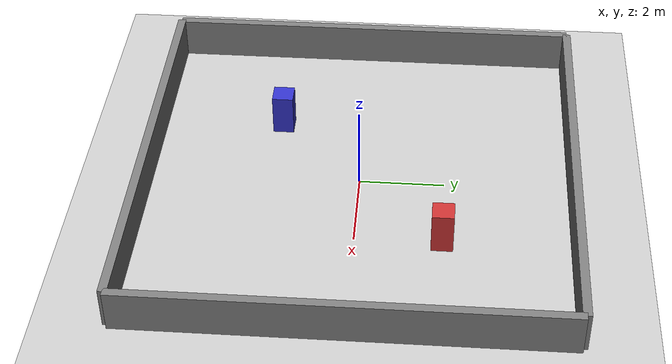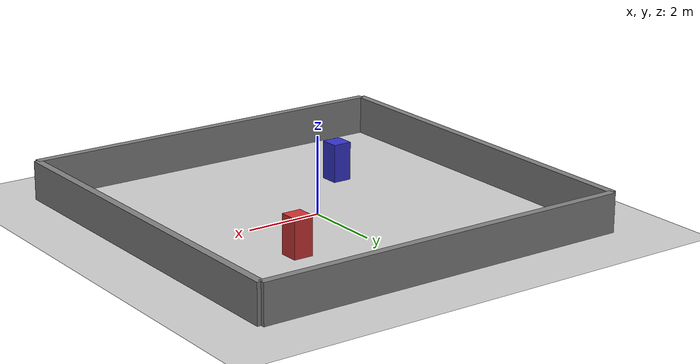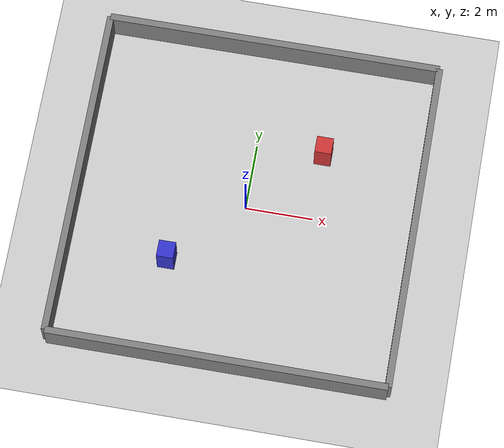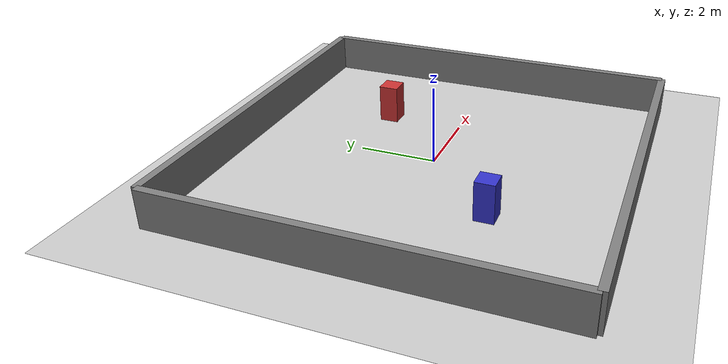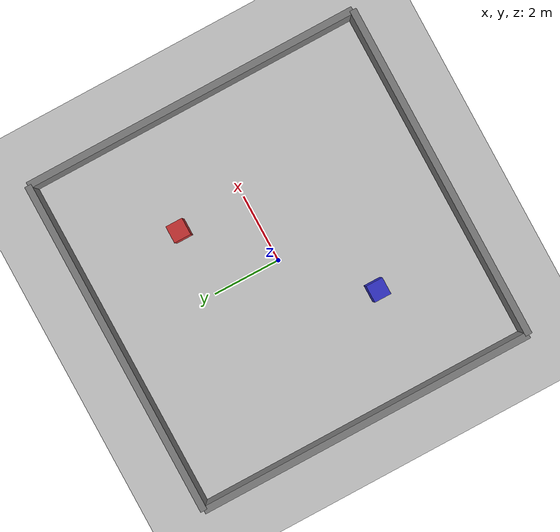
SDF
<?xml version="1.0"?>
<sdf version="1.6">
  <world name="bunker_world">

    <include>
      <uri>model://ground_plane</uri>
    </include>
    <include>
      <uri>model://sun</uri>
    </include>

    <!-- Murs -->
    <model name="wall_north">
      <static>true</static>
      <pose>0 5 0.5 0 0 0</pose>
      <link name="link">
        <collision name="collision">
          <geometry><box><size>10 0.2 1</size></box></geometry>
        </collision>
        <visual name="visual">
          <geometry><box><size>10 0.2 1</size></box></geometry>
          <material><ambient>0.5 0.5 0.5 1</ambient></material>
        </visual>
      </link>
    </model>

    <model name="wall_south">
      <static>true</static>
      <pose>0 -5 0.5 0 0 0</pose>
      <link name="link">
        <collision name="collision">
          <geometry><box><size>10 0.2 1</size></box></geometry>
        </collision>
        <visual name="visual">
          <geometry><box><size>10 0.2 1</size></box></geometry>
          <material><ambient>0.5 0.5 0.5 1</ambient></material>
        </visual>
      </link>
    </model>

    <model name="wall_east">
      <static>true</static>
      <pose>5 0 0.5 0 0 0</pose>
      <link name="link">
        <collision name="collision">
          <geometry><box><size>0.2 10 1</size></box></geometry>
        </collision>
        <visual name="visual">
          <geometry><box><size>0.2 10 1</size></box></geometry>
          <material><ambient>0.5 0.5 0.5 1</ambient></material>
        </visual>
      </link>
    </model>

    <model name="wall_west">
      <static>true</static>
      <pose>-5 0 0.5 0 0 0</pose>
      <link name="link">
        <collision name="collision">
          <geometry><box><size>0.2 10 1</size></box></geometry>
        </collision>
        <visual name="visual">
          <geometry><box><size>0.2 10 1</size></box></geometry>
          <material><ambient>0.5 0.5 0.5 1</ambient></material>
        </visual>
      </link>
    </model>

    <!-- Obstacles -->
    <model name="box1">
      <static>true</static>
      <pose>2 2 0.5 0 0 0</pose>
      <link name="link">
        <collision name="collision">
          <geometry><box><size>0.5 0.5 1</size></box></geometry>
        </collision>
        <visual name="visual">
          <geometry><box><size>0.5 0.5 1</size></box></geometry>
          <material><ambient>0.8 0.2 0.2 1</ambient></material>
        </visual>
      </link>
    </model>

    <model name="box2">
      <static>true</static>
      <pose>-2 -2 0.5 0 0 0</pose>
      <link name="link">
        <collision name="collision">
          <geometry><box><size>0.5 0.5 1</size></box></geometry>
        </collision>
        <visual name="visual">
          <geometry><box><size>0.5 0.5 1</size></box></geometry>
          <material><ambient>0.2 0.2 0.8 1</ambient></material>
        </visual>
      </link>
    </model>

  </world>
</sdf>
